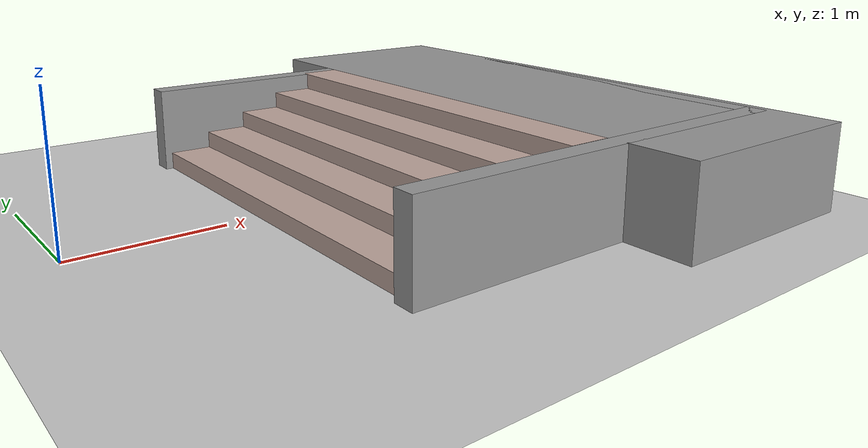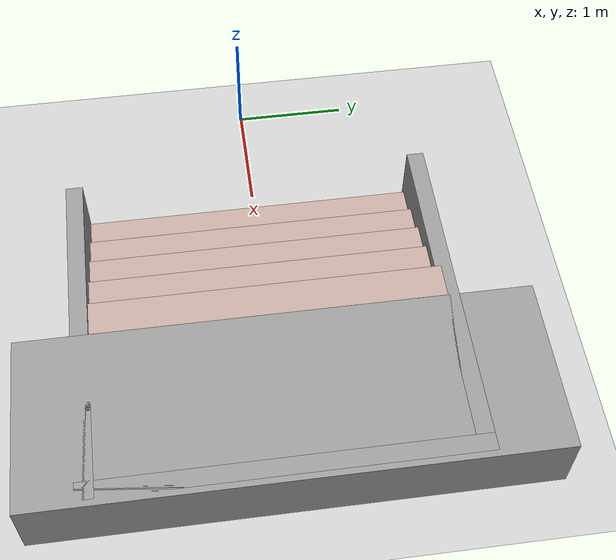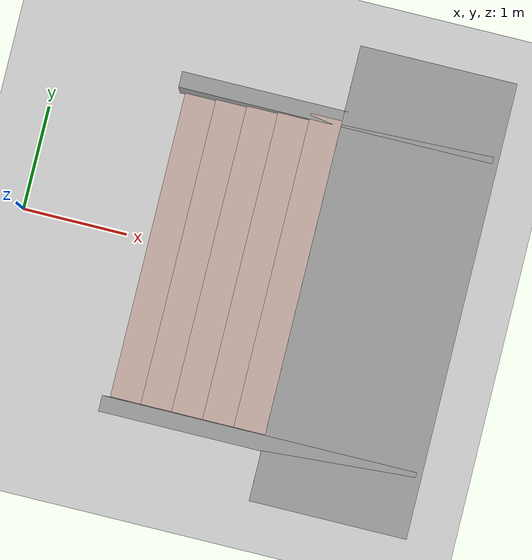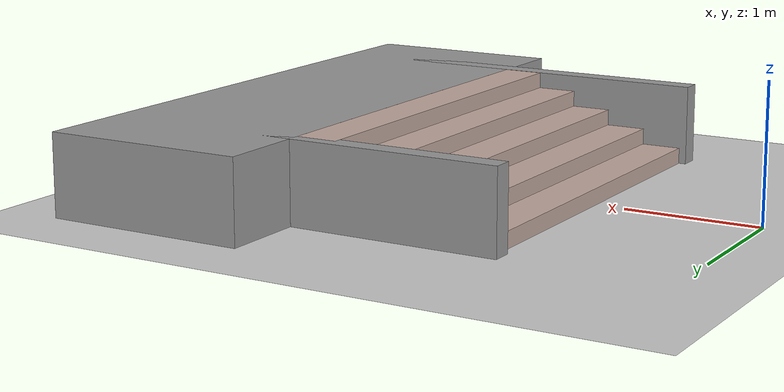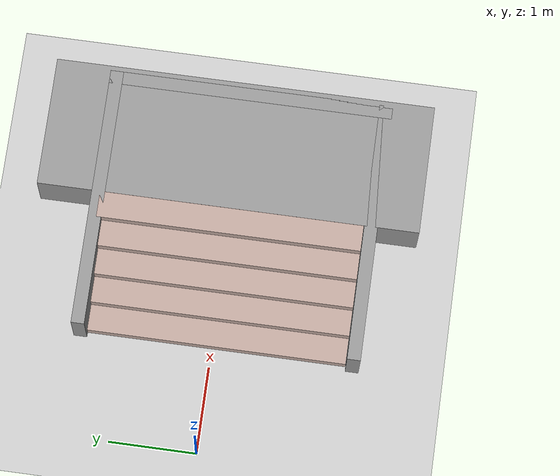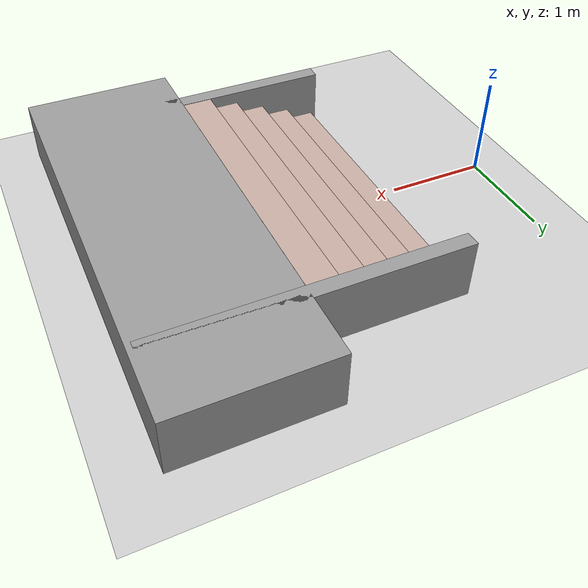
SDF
<sdf version="1.7">
 <world name="default">
  <light name="sun" type="directional">
   <pose>0 0 10 0 -0 0</pose>
   <diffuse>0.8 0.8 0.8 1</diffuse>
   <specular>0.2 0.2 0.2 1</specular>
   <attenuation>
    <range>1000</range>
    <constant>0.9</constant>
    <linear>0.01</linear>
    <quadratic>0.001</quadratic>
   </attenuation>
   <direction>-0.5 0.1 -0.9</direction>
   <spot><inner_angle>0</inner_angle><outer_angle>0</outer_angle><falloff>0</falloff></spot>
  </light>
  <model name="ground_plane">
   <static>1</static>
   <link name="link">
    <collision name="collision">
     <geometry><plane><normal>0 0 1</normal><size>100 100</size></plane></geometry>
     <surface>
      <contact><collide_bitmask>65535</collide_bitmask></contact>
      <friction><ode><mu>100</mu><mu2>50</mu2></ode></friction>
     </surface>
    </collision>
    <visual name="visual">
     <cast_shadows>0</cast_shadows>
     <geometry><plane><normal>0 0 1</normal><size>100 100</size></plane></geometry>
     <material>
      <script><uri>file://media/materials/scripts/gazebo.material</uri><name>Gazebo/Grey</name></script>
     </material>
    </visual>
   </link>
  </model>
  <gravity>0 0 -9.8</gravity>
  <magnetic_field>6e-06 2.3e-05 -4.2e-05</magnetic_field>
  <atmosphere type="adiabatic"/>
  <physics type="ode">
   <max_step_size>0.001</max_step_size>
   <real_time_factor>1</real_time_factor>
   <real_time_update_rate>1000</real_time_update_rate>
  </physics>
  <scene><ambient>0.4 0.4 0.4 1</ambient><background>0.7 0.7 0.7 1</background><shadows>1</shadows></scene>
  <spherical_coordinates>
   <surface_model>EARTH_WGS84</surface_model>
   <latitude_deg>0</latitude_deg>
   <longitude_deg>0</longitude_deg>
   <elevation>0</elevation>
   <heading_deg>0</heading_deg>
  </spherical_coordinates>
  <model name="Untitled7">
   <pose>2.20752 0.022395 0 0 -0 0</pose>
   <link name="Stairs_1">
    <visual name="Stairs_1_Visual_0">
     <pose>-0.835172 -0.047 0.06 0 -0 1.5708</pose>
     <geometry><box><size>3 0.3 0.12</size></box></geometry>
     <material>
      <script><uri>file://media/materials/scripts/gazebo.material</uri><name>Gazebo/Grey</name></script>
      <ambient>0.760784 0.662745 0.627451 1</ambient>
     </material>
     <meta><layer>0</layer></meta>
    </visual>
    <collision name="Stairs_1_Collision_0">
     <geometry><box><size>3 0.3 0.12</size></box></geometry>
     <pose>-0.835172 -0.047 0.06 0 -0 1.5708</pose>
    </collision>
    <visual name="Stairs_1_Visual_1">
     <pose>-0.535172 -0.047 0.18 0 -0 1.5708</pose>
     <geometry><box><size>3 0.3 0.12</size></box></geometry>
     <material>
      <script><uri>file://media/materials/scripts/gazebo.material</uri><name>Gazebo/Grey</name></script>
      <ambient>0.760784 0.662745 0.627451 1</ambient>
     </material>
     <meta><layer>0</layer></meta>
    </visual>
    <collision name="Stairs_1_Collision_1">
     <geometry><box><size>3 0.3 0.12</size></box></geometry>
     <pose>-0.535172 -0.047 0.18 0 -0 1.5708</pose>
    </collision>
    <visual name="Stairs_1_Visual_2">
     <pose>-0.235172 -0.047 0.3 0 -0 1.5708</pose>
     <geometry><box><size>3 0.3 0.12</size></box></geometry>
     <material>
      <script><uri>file://media/materials/scripts/gazebo.material</uri><name>Gazebo/Grey</name></script>
      <ambient>0.760784 0.662745 0.627451 1</ambient>
     </material>
     <meta><layer>0</layer></meta>
    </visual>
    <collision name="Stairs_1_Collision_2">
     <geometry><box><size>3 0.3 0.12</size></box></geometry>
     <pose>-0.235172 -0.047 0.3 0 -0 1.5708</pose>
    </collision>
    <visual name="Stairs_1_Visual_3">
     <pose>0.064828 -0.047 0.42 0 -0 1.5708</pose>
     <geometry><box><size>3 0.3 0.12</size></box></geometry>
     <material>
      <script><uri>file://media/materials/scripts/gazebo.material</uri><name>Gazebo/Grey</name></script>
      <ambient>0.760784 0.662745 0.627451 1</ambient>
     </material>
     <meta><layer>0</layer></meta>
    </visual>
    <collision name="Stairs_1_Collision_3">
     <geometry><box><size>3 0.3 0.12</size></box></geometry>
     <pose>0.064828 -0.047 0.42 0 -0 1.5708</pose>
    </collision>
    <visual name="Stairs_1_Visual_4">
     <pose>0.364828 -0.047 0.54 0 -0 1.5708</pose>
     <geometry><box><size>3 0.3 0.12</size></box></geometry>
     <material>
      <script><uri>file://media/materials/scripts/gazebo.material</uri><name>Gazebo/Grey</name></script>
      <ambient>0.760784 0.662745 0.627451 1</ambient>
     </material>
     <meta><layer>0</layer></meta>
    </visual>
    <collision name="Stairs_1_Collision_4">
     <geometry><box><size>3 0.3 0.12</size></box></geometry>
     <pose>0.364828 -0.047 0.54 0 -0 1.5708</pose>
    </collision>
   </link>
   <link name="Wall_0">
    <collision name="Wall_0_Collision">
     <geometry><box><size>3 0.15 0.6</size></box></geometry>
     <pose>0 0 0.3 0 -0 0</pose>
    </collision>
    <visual name="Wall_0_Visual">
     <pose>0 0 0.3 0 -0 0</pose>
     <geometry><box><size>3 0.15 0.6</size></box></geometry>
     <material>
      <script><uri>file://media/materials/scripts/gazebo.material</uri><name>Gazebo/Grey</name></script>
      <ambient>1 1 1 1</ambient>
     </material>
     <meta><layer>0</layer></meta>
    </visual>
    <pose>0.461987 -1.627 0 0 -0 0</pose>
   </link>
   <link name="Wall_1">
    <collision name="Wall_1_Collision">
     <geometry><box><size>3.25 0.15 0.6</size></box></geometry>
     <pose>0 0 0.3 0 -0 0</pose>
    </collision>
    <visual name="Wall_1_Visual">
     <pose>0 0 0.3 0 -0 0</pose>
     <geometry><box><size>3.25 0.15 0.6</size></box></geometry>
     <material>
      <script><uri>file://media/materials/scripts/gazebo.material</uri><name>Gazebo/Grey</name></script>
      <ambient>1 1 1 1</ambient>
     </material>
     <meta><layer>0</layer></meta>
    </visual>
    <pose>1.88699 -0.077 0 0 -0 1.5708</pose>
   </link>
   <link name="Wall_2">
    <collision name="Wall_2_Collision">
     <geometry><box><size>3 0.15 0.6</size></box></geometry>
     <pose>0 0 0.3 0 -0 0</pose>
    </collision>
    <visual name="Wall_2_Visual">
     <pose>0 0 0.3 0 -0 0</pose>
     <geometry><box><size>3 0.15 0.6</size></box></geometry>
     <material>
      <script><uri>file://media/materials/scripts/gazebo.material</uri><name>Gazebo/Grey</name></script>
      <ambient>1 1 1 1</ambient>
     </material>
     <meta><layer>0</layer></meta>
    </visual>
    <pose>0.461987 1.473 0 0 -0 3.14159</pose>
   </link>
   <link name="Wall_4">
    <collision name="Wall_4_Collision">
     <geometry><box><size>4.35 1.5 0.6</size></box></geometry>
     <pose>0 0 0.3 0 -0 0</pose>
    </collision>
    <visual name="Wall_4_Visual">
     <pose>0 0 0.3 0 -0 0</pose>
     <geometry><box><size>4.35 1.5 0.6</size></box></geometry>
     <material>
      <script><uri>file://media/materials/scripts/gazebo.material</uri><name>Gazebo/Grey</name></script>
      <ambient>1 1 1 1</ambient>
     </material>
     <meta><layer>0</layer></meta>
    </visual>
    <pose>1.26501 0 0 0 -0 -1.5708</pose>
   </link>
   <static>1</static>
  </model>
 </world>
</sdf>
